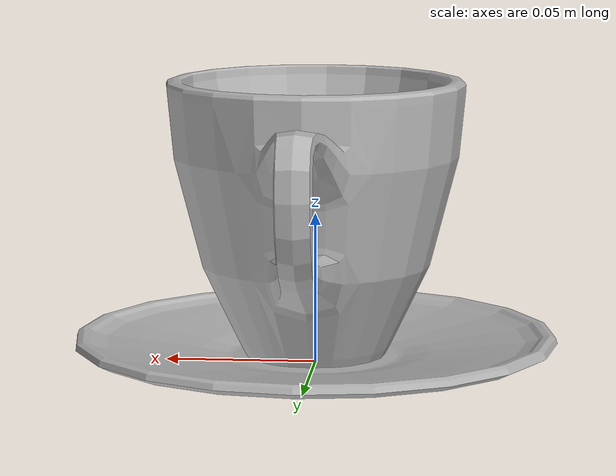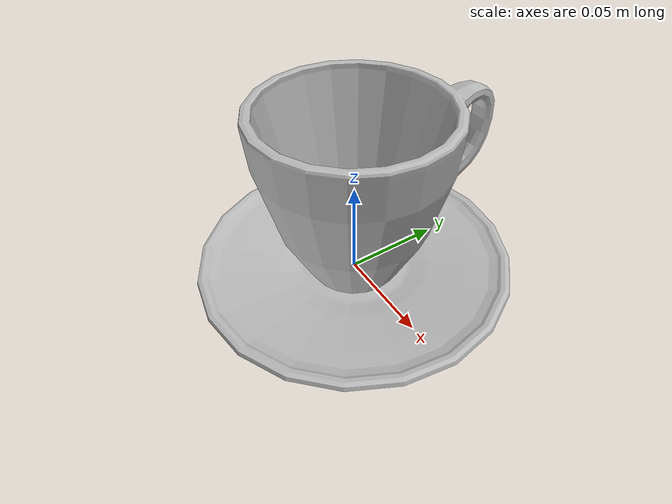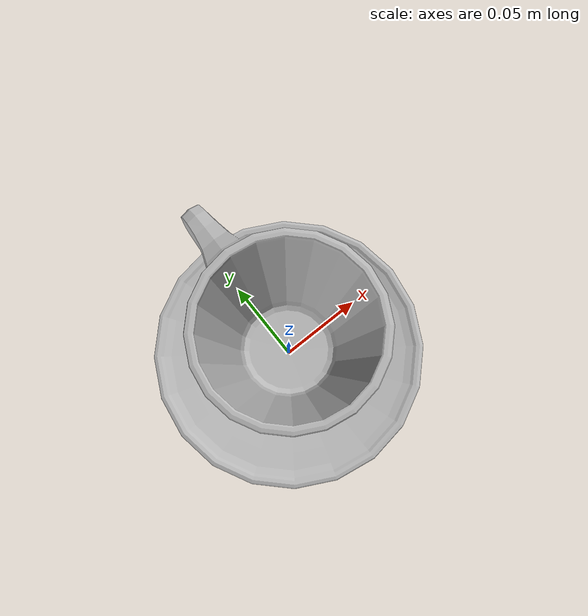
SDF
<?xml version='1.0'?>
<sdf version='1.4'>
  <model name='149'>
    <pose>0 0 0 0 0 0</pose>
    <static>true</static>
    <link name='link'>
      <collision name='collision'>
        <pose>0 0 0 0 0 0</pose>
        <geometry>
          <box>
            <size>0.160344 0.162279 0</size>
          </box>
        </geometry>
      </collision>
      <visual name='visual'>
        <pose>0 0 0 0 0 0</pose>
        <geometry>
          <mesh><uri>model://149/149.dae</uri></mesh>
        </geometry>
      </visual>
    </link>
  </model>
</sdf>
